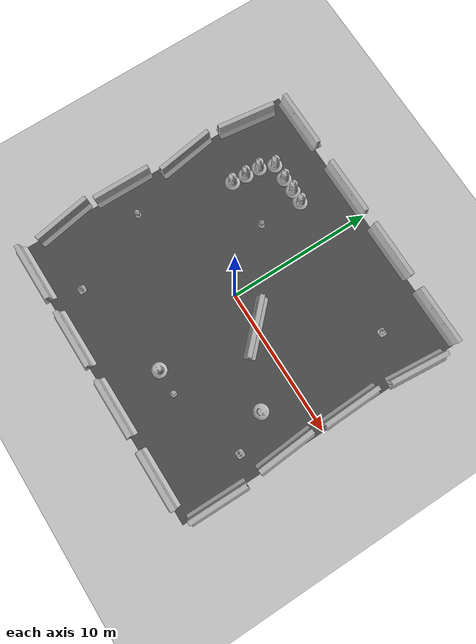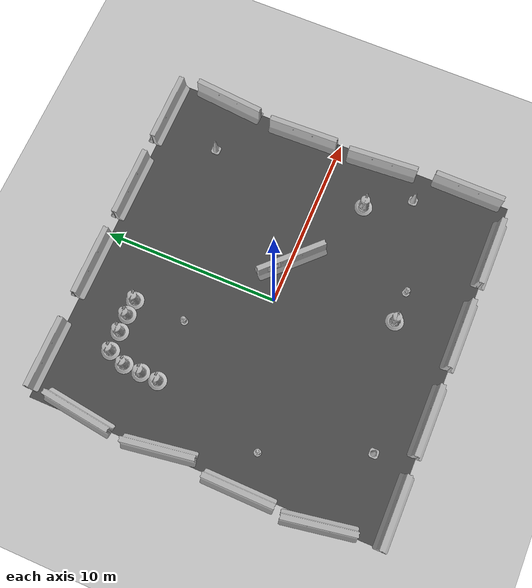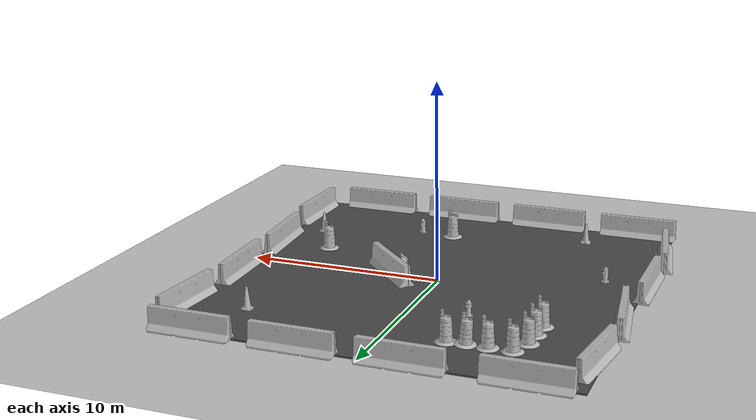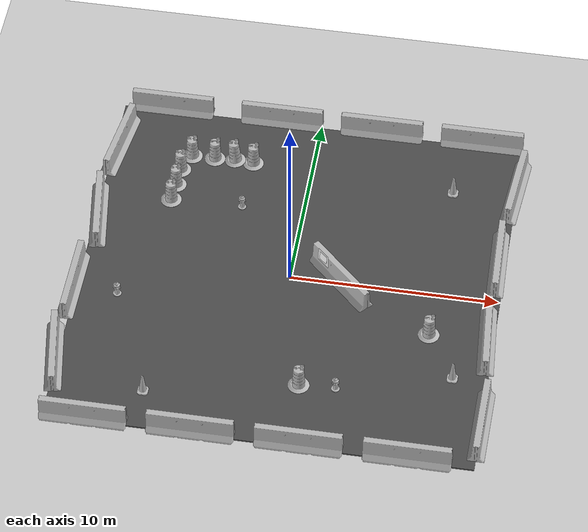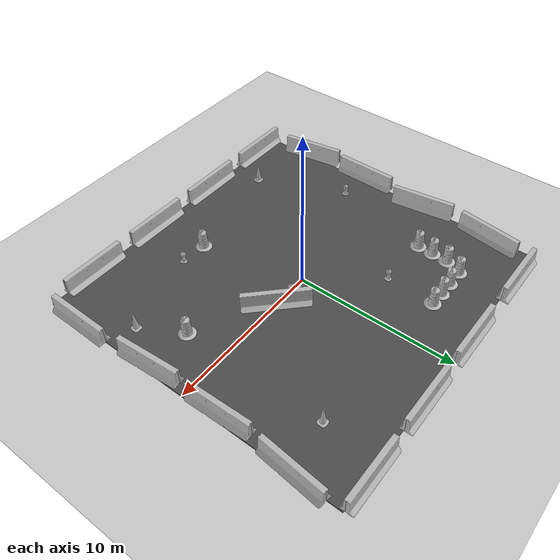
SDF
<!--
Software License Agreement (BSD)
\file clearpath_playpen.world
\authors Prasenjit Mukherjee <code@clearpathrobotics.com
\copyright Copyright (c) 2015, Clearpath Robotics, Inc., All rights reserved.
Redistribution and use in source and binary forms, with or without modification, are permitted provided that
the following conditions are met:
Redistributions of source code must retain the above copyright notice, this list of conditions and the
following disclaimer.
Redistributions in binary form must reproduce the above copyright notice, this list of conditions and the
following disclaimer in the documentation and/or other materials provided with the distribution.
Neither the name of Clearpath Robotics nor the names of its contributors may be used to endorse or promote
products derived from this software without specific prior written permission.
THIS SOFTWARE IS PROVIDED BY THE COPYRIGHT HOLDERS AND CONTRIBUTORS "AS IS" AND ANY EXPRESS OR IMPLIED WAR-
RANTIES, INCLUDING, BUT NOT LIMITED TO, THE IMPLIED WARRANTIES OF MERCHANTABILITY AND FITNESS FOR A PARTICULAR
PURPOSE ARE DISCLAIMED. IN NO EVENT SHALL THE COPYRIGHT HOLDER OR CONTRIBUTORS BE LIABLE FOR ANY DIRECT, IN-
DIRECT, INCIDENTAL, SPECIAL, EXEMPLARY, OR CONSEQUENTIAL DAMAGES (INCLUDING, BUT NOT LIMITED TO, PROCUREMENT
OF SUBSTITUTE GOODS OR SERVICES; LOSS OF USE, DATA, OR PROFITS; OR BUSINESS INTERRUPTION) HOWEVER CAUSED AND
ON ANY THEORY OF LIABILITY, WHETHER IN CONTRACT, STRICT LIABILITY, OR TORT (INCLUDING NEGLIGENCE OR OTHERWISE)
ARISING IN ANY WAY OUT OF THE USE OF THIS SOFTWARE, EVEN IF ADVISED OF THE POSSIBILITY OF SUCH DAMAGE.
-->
<sdf version="1.4">
 <world name="default">
  <light name="sun" type="directional">
   <pose>0 0 10 0 -0 0</pose>
   <diffuse>0.8 0.8 0.8 1</diffuse>
   <specular>0.2 0.2 0.2 1</specular>
   <attenuation>
    <range>1000</range>
    <constant>0.9</constant>
    <linear>0.01</linear>
    <quadratic>0.001</quadratic>
   </attenuation>
   <direction>-0.5 0.1 -0.9</direction>
  </light>
  <model name="ground_plane">
   <static>1</static>
   <link name="link">
    <collision name="collision">
     <geometry><plane><normal>0 0 1</normal><size>100 100</size></plane></geometry>
     <surface><friction><ode><mu>100</mu><mu2>50</mu2></ode></friction></surface>
    </collision>
    <visual name="visual">
     <cast_shadows>0</cast_shadows>
     <geometry><plane><normal>0 0 1</normal><size>100 100</size></plane></geometry>
     <material>
      <script><uri>file://media/materials/scripts/gazebo.material</uri><name>Gazebo/Grey</name></script>
     </material>
    </visual>
    <velocity_decay><linear>0</linear><angular>0</angular></velocity_decay>
   </link>
  </model>
  <physics type="ode">
   <max_step_size>0.01</max_step_size>
   <real_time_factor>1</real_time_factor>
   <real_time_update_rate>100</real_time_update_rate>
   <gravity>0 0 -9.8</gravity>
  </physics>
  <scene><ambient>0.4 0.4 0.4 1</ambient><background>0.7 0.7 0.7 1</background><shadows>1</shadows></scene>
  <model name="jersey_barrier">
   <static>1</static>
   <link name="link">
    <visual name="visual">
     <geometry><mesh><uri>model://jersey_barrier/meshes/jersey_barrier.dae</uri></mesh></geometry>
    </visual>
    <collision name="upright">
     <pose>0 0 0.5715 0 -0 0</pose>
     <geometry><box><size>4.06542 0.3063 1.143</size></box></geometry>
    </collision>
    <collision name="base">
     <pose>0 0 0.032258 0 -0 0</pose>
     <geometry><box><size>4.06542 0.8107 0.064516</size></box></geometry>
    </collision>
    <collision name="base2">
     <pose>0 0 0.1 0 -0 0</pose>
     <geometry><box><size>4.06542 0.65 0.1</size></box></geometry>
    </collision>
    <collision name="base3">
     <pose>0 0 0.2 0 -0 0</pose>
     <geometry><box><size>4.06542 0.5 0.1</size></box></geometry>
    </collision>
    <collision name="left-angle">
     <pose>0 -0.224 0.2401 0.9 -0 0</pose>
     <geometry><box><size>4.06542 0.5 0.064516</size></box></geometry>
    </collision>
    <collision name="right-angle">
     <pose>0 0.224 0.2401 -0.9 0 0</pose>
     <geometry><box><size>4.06542 0.5 0.064516</size></box></geometry>
    </collision>
    <velocity_decay><linear>0</linear><angular>0</angular></velocity_decay>
   </link>
   <pose>-8 -10 0 0 -0 0</pose>
  </model>
  <model name="jersey_barrier_0">
   <static>1</static>
   <link name="link">
    <visual name="visual">
     <geometry><mesh><uri>model://jersey_barrier/meshes/jersey_barrier.dae</uri></mesh></geometry>
    </visual>
    <collision name="upright">
     <pose>0 0 0.5715 0 -0 0</pose>
     <geometry><box><size>4.06542 0.3063 1.143</size></box></geometry>
    </collision>
    <collision name="base">
     <pose>0 0 0.032258 0 -0 0</pose>
     <geometry><box><size>4.06542 0.8107 0.064516</size></box></geometry>
    </collision>
    <collision name="base2">
     <pose>0 0 0.1 0 -0 0</pose>
     <geometry><box><size>4.06542 0.65 0.1</size></box></geometry>
    </collision>
    <collision name="base3">
     <pose>0 0 0.2 0 -0 0</pose>
     <geometry><box><size>4.06542 0.5 0.1</size></box></geometry>
    </collision>
    <collision name="left-angle">
     <pose>0 -0.224 0.2401 0.9 -0 0</pose>
     <geometry><box><size>4.06542 0.5 0.064516</size></box></geometry>
    </collision>
    <collision name="right-angle">
     <pose>0 0.224 0.2401 -0.9 0 0</pose>
     <geometry><box><size>4.06542 0.5 0.064516</size></box></geometry>
    </collision>
    <velocity_decay><linear>0</linear><angular>0</angular></velocity_decay>
   </link>
   <pose>-3 -10 0 0 -0 0</pose>
  </model>
  <model name="jersey_barrier_1">
   <static>1</static>
   <link name="link">
    <visual name="visual">
     <geometry><mesh><uri>model://jersey_barrier/meshes/jersey_barrier.dae</uri></mesh></geometry>
    </visual>
    <collision name="upright">
     <pose>0 0 0.5715 0 -0 0</pose>
     <geometry><box><size>4.06542 0.3063 1.143</size></box></geometry>
    </collision>
    <collision name="base">
     <pose>0 0 0.032258 0 -0 0</pose>
     <geometry><box><size>4.06542 0.8107 0.064516</size></box></geometry>
    </collision>
    <collision name="base2">
     <pose>0 0 0.1 0 -0 0</pose>
     <geometry><box><size>4.06542 0.65 0.1</size></box></geometry>
    </collision>
    <collision name="base3">
     <pose>0 0 0.2 0 -0 0</pose>
     <geometry><box><size>4.06542 0.5 0.1</size></box></geometry>
    </collision>
    <collision name="left-angle">
     <pose>0 -0.224 0.2401 0.9 -0 0</pose>
     <geometry><box><size>4.06542 0.5 0.064516</size></box></geometry>
    </collision>
    <collision name="right-angle">
     <pose>0 0.224 0.2401 -0.9 0 0</pose>
     <geometry><box><size>4.06542 0.5 0.064516</size></box></geometry>
    </collision>
    <velocity_decay><linear>0</linear><angular>0</angular></velocity_decay>
   </link>
   <pose>2 -10 0 0 -0 0</pose>
  </model>
  <model name="jersey_barrier_2">
   <static>1</static>
   <link name="link">
    <visual name="visual">
     <geometry><mesh><uri>model://jersey_barrier/meshes/jersey_barrier.dae</uri></mesh></geometry>
    </visual>
    <collision name="upright">
     <pose>0 0 0.5715 0 -0 0</pose>
     <geometry><box><size>4.06542 0.3063 1.143</size></box></geometry>
    </collision>
    <collision name="base">
     <pose>0 0 0.032258 0 -0 0</pose>
     <geometry><box><size>4.06542 0.8107 0.064516</size></box></geometry>
    </collision>
    <collision name="base2">
     <pose>0 0 0.1 0 -0 0</pose>
     <geometry><box><size>4.06542 0.65 0.1</size></box></geometry>
    </collision>
    <collision name="base3">
     <pose>0 0 0.2 0 -0 0</pose>
     <geometry><box><size>4.06542 0.5 0.1</size></box></geometry>
    </collision>
    <collision name="left-angle">
     <pose>0 -0.224 0.2401 0.9 -0 0</pose>
     <geometry><box><size>4.06542 0.5 0.064516</size></box></geometry>
    </collision>
    <collision name="right-angle">
     <pose>0 0.224 0.2401 -0.9 0 0</pose>
     <geometry><box><size>4.06542 0.5 0.064516</size></box></geometry>
    </collision>
    <velocity_decay><linear>0</linear><angular>0</angular></velocity_decay>
   </link>
   <pose>7 -10 0 0 -0 0</pose>
  </model>
  <model name="jersey_barrier_3">
   <static>1</static>
   <link name="link">
    <visual name="visual">
     <geometry><mesh><uri>model://jersey_barrier/meshes/jersey_barrier.dae</uri></mesh></geometry>
    </visual>
    <collision name="upright">
     <pose>0 0 0.5715 0 -0 0</pose>
     <geometry><box><size>4.06542 0.3063 1.143</size></box></geometry>
    </collision>
    <collision name="base">
     <pose>0 0 0.032258 0 -0 0</pose>
     <geometry><box><size>4.06542 0.8107 0.064516</size></box></geometry>
    </collision>
    <collision name="base2">
     <pose>0 0 0.1 0 -0 0</pose>
     <geometry><box><size>4.06542 0.65 0.1</size></box></geometry>
    </collision>
    <collision name="base3">
     <pose>0 0 0.2 0 -0 0</pose>
     <geometry><box><size>4.06542 0.5 0.1</size></box></geometry>
    </collision>
    <collision name="left-angle">
     <pose>0 -0.224 0.2401 0.9 -0 0</pose>
     <geometry><box><size>4.06542 0.5 0.064516</size></box></geometry>
    </collision>
    <collision name="right-angle">
     <pose>0 0.224 0.2401 -0.9 0 0</pose>
     <geometry><box><size>4.06542 0.5 0.064516</size></box></geometry>
    </collision>
    <velocity_decay><linear>0</linear><angular>0</angular></velocity_decay>
   </link>
   <pose>-7.50675 10 0 0 -0 0</pose>
  </model>
  <model name="jersey_barrier_4">
   <static>1</static>
   <link name="link">
    <visual name="visual">
     <geometry><mesh><uri>model://jersey_barrier/meshes/jersey_barrier.dae</uri></mesh></geometry>
    </visual>
    <collision name="upright">
     <pose>0 0 0.5715 0 -0 0</pose>
     <geometry><box><size>4.06542 0.3063 1.143</size></box></geometry>
    </collision>
    <collision name="base">
     <pose>0 0 0.032258 0 -0 0</pose>
     <geometry><box><size>4.06542 0.8107 0.064516</size></box></geometry>
    </collision>
    <collision name="base2">
     <pose>0 0 0.1 0 -0 0</pose>
     <geometry><box><size>4.06542 0.65 0.1</size></box></geometry>
    </collision>
    <collision name="base3">
     <pose>0 0 0.2 0 -0 0</pose>
     <geometry><box><size>4.06542 0.5 0.1</size></box></geometry>
    </collision>
    <collision name="left-angle">
     <pose>0 -0.224 0.2401 0.9 -0 0</pose>
     <geometry><box><size>4.06542 0.5 0.064516</size></box></geometry>
    </collision>
    <collision name="right-angle">
     <pose>0 0.224 0.2401 -0.9 0 0</pose>
     <geometry><box><size>4.06542 0.5 0.064516</size></box></geometry>
    </collision>
    <velocity_decay><linear>0</linear><angular>0</angular></velocity_decay>
   </link>
   <pose>-2 10 0 0 -0 0</pose>
  </model>
  <model name="jersey_barrier_5">
   <static>1</static>
   <link name="link">
    <visual name="visual">
     <geometry><mesh><uri>model://jersey_barrier/meshes/jersey_barrier.dae</uri></mesh></geometry>
    </visual>
    <collision name="upright">
     <pose>0 0 0.5715 0 -0 0</pose>
     <geometry><box><size>4.06542 0.3063 1.143</size></box></geometry>
    </collision>
    <collision name="base">
     <pose>0 0 0.032258 0 -0 0</pose>
     <geometry><box><size>4.06542 0.8107 0.064516</size></box></geometry>
    </collision>
    <collision name="base2">
     <pose>0 0 0.1 0 -0 0</pose>
     <geometry><box><size>4.06542 0.65 0.1</size></box></geometry>
    </collision>
    <collision name="base3">
     <pose>0 0 0.2 0 -0 0</pose>
     <geometry><box><size>4.06542 0.5 0.1</size></box></geometry>
    </collision>
    <collision name="left-angle">
     <pose>0 -0.224 0.2401 0.9 -0 0</pose>
     <geometry><box><size>4.06542 0.5 0.064516</size></box></geometry>
    </collision>
    <collision name="right-angle">
     <pose>0 0.224 0.2401 -0.9 0 0</pose>
     <geometry><box><size>4.06542 0.5 0.064516</size></box></geometry>
    </collision>
    <velocity_decay><linear>0</linear><angular>0</angular></velocity_decay>
   </link>
   <pose>3 10 0 0 -0 0</pose>
  </model>
  <model name="jersey_barrier_6">
   <static>1</static>
   <link name="link">
    <visual name="visual">
     <geometry><mesh><uri>model://jersey_barrier/meshes/jersey_barrier.dae</uri></mesh></geometry>
    </visual>
    <collision name="upright">
     <pose>0 0 0.5715 0 -0 0</pose>
     <geometry><box><size>4.06542 0.3063 1.143</size></box></geometry>
    </collision>
    <collision name="base">
     <pose>0 0 0.032258 0 -0 0</pose>
     <geometry><box><size>4.06542 0.8107 0.064516</size></box></geometry>
    </collision>
    <collision name="base2">
     <pose>0 0 0.1 0 -0 0</pose>
     <geometry><box><size>4.06542 0.65 0.1</size></box></geometry>
    </collision>
    <collision name="base3">
     <pose>0 0 0.2 0 -0 0</pose>
     <geometry><box><size>4.06542 0.5 0.1</size></box></geometry>
    </collision>
    <collision name="left-angle">
     <pose>0 -0.224 0.2401 0.9 -0 0</pose>
     <geometry><box><size>4.06542 0.5 0.064516</size></box></geometry>
    </collision>
    <collision name="right-angle">
     <pose>0 0.224 0.2401 -0.9 0 0</pose>
     <geometry><box><size>4.06542 0.5 0.064516</size></box></geometry>
    </collision>
    <velocity_decay><linear>0</linear><angular>0</angular></velocity_decay>
   </link>
   <pose>8 10 0 0 -0 0</pose>
  </model>
  <model name="jersey_barrier_7">
   <static>1</static>
   <link name="link">
    <visual name="visual">
     <geometry><mesh><uri>model://jersey_barrier/meshes/jersey_barrier.dae</uri></mesh></geometry>
    </visual>
    <collision name="upright">
     <pose>0 0 0.5715 0 -0 0</pose>
     <geometry><box><size>4.06542 0.3063 1.143</size></box></geometry>
    </collision>
    <collision name="base">
     <pose>0 0 0.032258 0 -0 0</pose>
     <geometry><box><size>4.06542 0.8107 0.064516</size></box></geometry>
    </collision>
    <collision name="base2">
     <pose>0 0 0.1 0 -0 0</pose>
     <geometry><box><size>4.06542 0.65 0.1</size></box></geometry>
    </collision>
    <collision name="base3">
     <pose>0 0 0.2 0 -0 0</pose>
     <geometry><box><size>4.06542 0.5 0.1</size></box></geometry>
    </collision>
    <collision name="left-angle">
     <pose>0 -0.224 0.2401 0.9 -0 0</pose>
     <geometry><box><size>4.06542 0.5 0.064516</size></box></geometry>
    </collision>
    <collision name="right-angle">
     <pose>0 0.224 0.2401 -0.9 0 0</pose>
     <geometry><box><size>4.06542 0.5 0.064516</size></box></geometry>
    </collision>
    <velocity_decay><linear>0</linear><angular>0</angular></velocity_decay>
   </link>
   <pose>9.74902 -2.57759 0 0 -0 1.64</pose>
  </model>
  <model name="jersey_barrier_8">
   <static>1</static>
   <link name="link">
    <visual name="visual">
     <geometry><mesh><uri>model://jersey_barrier/meshes/jersey_barrier.dae</uri></mesh></geometry>
    </visual>
    <collision name="upright">
     <pose>0 0 0.5715 0 -0 0</pose>
     <geometry><box><size>4.06542 0.3063 1.143</size></box></geometry>
    </collision>
    <collision name="base">
     <pose>0 0 0.032258 0 -0 0</pose>
     <geometry><box><size>4.06542 0.8107 0.064516</size></box></geometry>
    </collision>
    <collision name="base2">
     <pose>0 0 0.1 0 -0 0</pose>
     <geometry><box><size>4.06542 0.65 0.1</size></box></geometry>
    </collision>
    <collision name="base3">
     <pose>0 0 0.2 0 -0 0</pose>
     <geometry><box><size>4.06542 0.5 0.1</size></box></geometry>
    </collision>
    <collision name="left-angle">
     <pose>0 -0.224 0.2401 0.9 -0 0</pose>
     <geometry><box><size>4.06542 0.5 0.064516</size></box></geometry>
    </collision>
    <collision name="right-angle">
     <pose>0 0.224 0.2401 -0.9 0 0</pose>
     <geometry><box><size>4.06542 0.5 0.064516</size></box></geometry>
    </collision>
    <velocity_decay><linear>0</linear><angular>0</angular></velocity_decay>
   </link>
   <pose>9.70141 2.24369 0 0 -0 1.6</pose>
  </model>
  <model name="jersey_barrier_9">
   <static>1</static>
   <link name="link">
    <visual name="visual">
     <geometry><mesh><uri>model://jersey_barrier/meshes/jersey_barrier.dae</uri></mesh></geometry>
    </visual>
    <collision name="upright">
     <pose>0 0 0.5715 0 -0 0</pose>
     <geometry><box><size>4.06542 0.3063 1.143</size></box></geometry>
    </collision>
    <collision name="base">
     <pose>0 0 0.032258 0 -0 0</pose>
     <geometry><box><size>4.06542 0.8107 0.064516</size></box></geometry>
    </collision>
    <collision name="base2">
     <pose>0 0 0.1 0 -0 0</pose>
     <geometry><box><size>4.06542 0.65 0.1</size></box></geometry>
    </collision>
    <collision name="base3">
     <pose>0 0 0.2 0 -0 0</pose>
     <geometry><box><size>4.06542 0.5 0.1</size></box></geometry>
    </collision>
    <collision name="left-angle">
     <pose>0 -0.224 0.2401 0.9 -0 0</pose>
     <geometry><box><size>4.06542 0.5 0.064516</size></box></geometry>
    </collision>
    <collision name="right-angle">
     <pose>0 0.224 0.2401 -0.9 0 0</pose>
     <geometry><box><size>4.06542 0.5 0.064516</size></box></geometry>
    </collision>
    <velocity_decay><linear>0</linear><angular>0</angular></velocity_decay>
   </link>
   <pose>-10.0607 -6.69856 0 0 0 -1.4</pose>
  </model>
  <model name="jersey_barrier_10">
   <static>1</static>
   <link name="link">
    <visual name="visual">
     <geometry><mesh><uri>model://jersey_barrier/meshes/jersey_barrier.dae</uri></mesh></geometry>
    </visual>
    <collision name="upright">
     <pose>0 0 0.5715 0 -0 0</pose>
     <geometry><box><size>4.06542 0.3063 1.143</size></box></geometry>
    </collision>
    <collision name="base">
     <pose>0 0 0.032258 0 -0 0</pose>
     <geometry><box><size>4.06542 0.8107 0.064516</size></box></geometry>
    </collision>
    <collision name="base2">
     <pose>0 0 0.1 0 -0 0</pose>
     <geometry><box><size>4.06542 0.65 0.1</size></box></geometry>
    </collision>
    <collision name="base3">
     <pose>0 0 0.2 0 -0 0</pose>
     <geometry><box><size>4.06542 0.5 0.1</size></box></geometry>
    </collision>
    <collision name="left-angle">
     <pose>0 -0.224 0.2401 0.9 -0 0</pose>
     <geometry><box><size>4.06542 0.5 0.064516</size></box></geometry>
    </collision>
    <collision name="right-angle">
     <pose>0 0.224 0.2401 -0.9 0 0</pose>
     <geometry><box><size>4.06542 0.5 0.064516</size></box></geometry>
    </collision>
    <velocity_decay><linear>0</linear><angular>0</angular></velocity_decay>
   </link>
   <pose>-10.0774 -2.27159 0 0 -0 1.56</pose>
  </model>
  <model name="jersey_barrier_11">
   <static>1</static>
   <link name="link">
    <visual name="visual">
     <geometry><mesh><uri>model://jersey_barrier/meshes/jersey_barrier.dae</uri></mesh></geometry>
    </visual>
    <collision name="upright">
     <pose>0 0 0.5715 0 -0 0</pose>
     <geometry><box><size>4.06542 0.3063 1.143</size></box></geometry>
    </collision>
    <collision name="base">
     <pose>0 0 0.032258 0 -0 0</pose>
     <geometry><box><size>4.06542 0.8107 0.064516</size></box></geometry>
    </collision>
    <collision name="base2">
     <pose>0 0 0.1 0 -0 0</pose>
     <geometry><box><size>4.06542 0.65 0.1</size></box></geometry>
    </collision>
    <collision name="base3">
     <pose>0 0 0.2 0 -0 0</pose>
     <geometry><box><size>4.06542 0.5 0.1</size></box></geometry>
    </collision>
    <collision name="left-angle">
     <pose>0 -0.224 0.2401 0.9 -0 0</pose>
     <geometry><box><size>4.06542 0.5 0.064516</size></box></geometry>
    </collision>
    <collision name="right-angle">
     <pose>0 0.224 0.2401 -0.9 0 0</pose>
     <geometry><box><size>4.06542 0.5 0.064516</size></box></geometry>
    </collision>
    <velocity_decay><linear>0</linear><angular>0</angular></velocity_decay>
   </link>
   <pose>-9.77013 2.34791 0 0 -0 1.72</pose>
  </model>
  <model name="jersey_barrier_12">
   <static>1</static>
   <link name="link">
    <visual name="visual">
     <geometry><mesh><uri>model://jersey_barrier/meshes/jersey_barrier.dae</uri></mesh></geometry>
    </visual>
    <collision name="upright">
     <pose>0 0 0.5715 0 -0 0</pose>
     <geometry><box><size>4.06542 0.3063 1.143</size></box></geometry>
    </collision>
    <collision name="base">
     <pose>0 0 0.032258 0 -0 0</pose>
     <geometry><box><size>4.06542 0.8107 0.064516</size></box></geometry>
    </collision>
    <collision name="base2">
     <pose>0 0 0.1 0 -0 0</pose>
     <geometry><box><size>4.06542 0.65 0.1</size></box></geometry>
    </collision>
    <collision name="base3">
     <pose>0 0 0.2 0 -0 0</pose>
     <geometry><box><size>4.06542 0.5 0.1</size></box></geometry>
    </collision>
    <collision name="left-angle">
     <pose>0 -0.224 0.2401 0.9 -0 0</pose>
     <geometry><box><size>4.06542 0.5 0.064516</size></box></geometry>
    </collision>
    <collision name="right-angle">
     <pose>0 0.224 0.2401 -0.9 0 0</pose>
     <geometry><box><size>4.06542 0.5 0.064516</size></box></geometry>
    </collision>
    <velocity_decay><linear>0</linear><angular>0</angular></velocity_decay>
   </link>
   <pose>10.0879 -7.62159 0 0 -0 1.56</pose>
  </model>
  <model name="jersey_barrier_13">
   <static>1</static>
   <link name="link">
    <visual name="visual">
     <geometry><mesh><uri>model://jersey_barrier/meshes/jersey_barrier.dae</uri></mesh></geometry>
    </visual>
    <collision name="upright">
     <pose>0 0 0.5715 0 -0 0</pose>
     <geometry><box><size>4.06542 0.3063 1.143</size></box></geometry>
    </collision>
    <collision name="base">
     <pose>0 0 0.032258 0 -0 0</pose>
     <geometry><box><size>4.06542 0.8107 0.064516</size></box></geometry>
    </collision>
    <collision name="base2">
     <pose>0 0 0.1 0 -0 0</pose>
     <geometry><box><size>4.06542 0.65 0.1</size></box></geometry>
    </collision>
    <collision name="base3">
     <pose>0 0 0.2 0 -0 0</pose>
     <geometry><box><size>4.06542 0.5 0.1</size></box></geometry>
    </collision>
    <collision name="left-angle">
     <pose>0 -0.224 0.2401 0.9 -0 0</pose>
     <geometry><box><size>4.06542 0.5 0.064516</size></box></geometry>
    </collision>
    <collision name="right-angle">
     <pose>0 0.224 0.2401 -0.9 0 0</pose>
     <geometry><box><size>4.06542 0.5 0.064516</size></box></geometry>
    </collision>
    <velocity_decay><linear>0</linear><angular>0</angular></velocity_decay>
   </link>
   <pose>10 7 0 0 -0 1.48</pose>
  </model>
  <model name="jersey_barrier_14">
   <static>1</static>
   <link name="link">
    <visual name="visual">
     <geometry><mesh><uri>model://jersey_barrier/meshes/jersey_barrier.dae</uri></mesh></geometry>
    </visual>
    <collision name="upright">
     <pose>0 0 0.5715 0 -0 0</pose>
     <geometry><box><size>4.06542 0.3063 1.143</size></box></geometry>
    </collision>
    <collision name="base">
     <pose>0 0 0.032258 0 -0 0</pose>
     <geometry><box><size>4.06542 0.8107 0.064516</size></box></geometry>
    </collision>
    <collision name="base2">
     <pose>0 0 0.1 0 -0 0</pose>
     <geometry><box><size>4.06542 0.65 0.1</size></box></geometry>
    </collision>
    <collision name="base3">
     <pose>0 0 0.2 0 -0 0</pose>
     <geometry><box><size>4.06542 0.5 0.1</size></box></geometry>
    </collision>
    <collision name="left-angle">
     <pose>0 -0.224 0.2401 0.9 -0 0</pose>
     <geometry><box><size>4.06542 0.5 0.064516</size></box></geometry>
    </collision>
    <collision name="right-angle">
     <pose>0 0.224 0.2401 -0.9 0 0</pose>
     <geometry><box><size>4.06542 0.5 0.064516</size></box></geometry>
    </collision>
    <velocity_decay><linear>0</linear><angular>0</angular></velocity_decay>
   </link>
   <pose>-9.64482 7.05946 0 0 -0 1.44</pose>
  </model>
  <model name="fire_hydrant">
   <static>1</static>
   <link name="link">
    <collision name="collision">
     <geometry><mesh><uri>model://fire_hydrant/meshes/fire_hydrant.dae</uri></mesh></geometry>
    </collision>
    <visual name="visual">
     <geometry><mesh><uri>model://fire_hydrant/meshes/fire_hydrant.dae</uri></mesh></geometry>
    </visual>
    <velocity_decay><linear>0</linear><angular>0</angular></velocity_decay>
   </link>
   <pose>3.18024 -6.51118 0 0 -0 0</pose>
  </model>
  <model name="fire_hydrant_0">
   <static>1</static>
   <link name="link">
    <collision name="collision">
     <geometry><mesh><uri>model://fire_hydrant/meshes/fire_hydrant.dae</uri></mesh></geometry>
    </collision>
    <visual name="visual">
     <geometry><mesh><uri>model://fire_hydrant/meshes/fire_hydrant.dae</uri></mesh></geometry>
    </visual>
    <velocity_decay><linear>0</linear><angular>0</angular></velocity_decay>
   </link>
   <pose>-3 4 0 0 -0 0</pose>
  </model>
  <model name="fire_hydrant_1">
   <static>1</static>
   <link name="link">
    <collision name="collision">
     <geometry><mesh><uri>model://fire_hydrant/meshes/fire_hydrant.dae</uri></mesh></geometry>
    </collision>
    <visual name="visual">
     <geometry><mesh><uri>model://fire_hydrant/meshes/fire_hydrant.dae</uri></mesh></geometry>
    </visual>
    <velocity_decay><linear>0</linear><angular>0</angular></velocity_decay>
   </link>
   <pose>-7.90686 -2.41363 0 0 -0 0</pose>
  </model>
  <model name="jersey_barrier_15">
   <static>1</static>
   <link name="link">
    <visual name="visual">
     <geometry><mesh><uri>model://jersey_barrier/meshes/jersey_barrier.dae</uri></mesh></geometry>
    </visual>
    <collision name="upright">
     <pose>0 0 0.5715 0 -0 0</pose>
     <geometry><box><size>4.06542 0.3063 1.143</size></box></geometry>
    </collision>
    <collision name="base">
     <pose>0 0 0.032258 0 -0 0</pose>
     <geometry><box><size>4.06542 0.8107 0.064516</size></box></geometry>
    </collision>
    <collision name="base2">
     <pose>0 0 0.1 0 -0 0</pose>
     <geometry><box><size>4.06542 0.65 0.1</size></box></geometry>
    </collision>
    <collision name="base3">
     <pose>0 0 0.2 0 -0 0</pose>
     <geometry><box><size>4.06542 0.5 0.1</size></box></geometry>
    </collision>
    <collision name="left-angle">
     <pose>0 -0.224 0.2401 0.9 -0 0</pose>
     <geometry><box><size>4.06542 0.5 0.064516</size></box></geometry>
    </collision>
    <collision name="right-angle">
     <pose>0 0.224 0.2401 -0.9 0 0</pose>
     <geometry><box><size>4.06542 0.5 0.064516</size></box></geometry>
    </collision>
    <velocity_decay><linear>0</linear><angular>0</angular></velocity_decay>
   </link>
   <pose>2.45495 0 0 0 -0 2.36</pose>
  </model>
  <model name="Construction Cone">
   <link name="link">
    <collision name="collision">
     <geometry>
      <mesh><scale>10 10 10</scale><uri>model://construction_cone/meshes/construction_cone.dae</uri></mesh>
     </geometry>
    </collision>
    <visual name="visual">
     <geometry>
      <mesh><scale>10 10 10</scale><uri>model://construction_cone/meshes/construction_cone.dae</uri></mesh>
     </geometry>
    </visual>
    <velocity_decay><linear>0</linear><angular>0</angular></velocity_decay>
    <inertial>
     <inertia><ixx>1</ixx><ixy>0</ixy><ixz>0</ixz><iyy>1</iyy><iyz>0</iyz><izz>1</izz></inertia>
     <mass>1</mass>
    </inertial>
   </link>
   <pose>-5.59121 -8 0.05 0 -1e-06 0</pose>
   <static>0</static>
  </model>
  <model name="Construction Barrel">
   <link name="link">
    <inertial>
     <pose>0 0 0.4 0 -0 0</pose>
     <mass>500</mass>
     <inertia><ixx>51.2096</ixx><iyy>51.2096</iyy><izz>25</izz><ixy>0</ixy><ixz>0</ixz><iyz>0</iyz></inertia>
    </inertial>
    <collision name="collision">
     <geometry><mesh><uri>model://construction_barrel/meshes/construction_barrel.dae</uri></mesh></geometry>
    </collision>
    <visual name="visual">
     <geometry><mesh><uri>model://construction_barrel/meshes/construction_barrel.dae</uri></mesh></geometry>
    </visual>
    <velocity_decay><linear>0</linear><angular>0</angular></velocity_decay>
   </link>
   <pose>7.00006 -2.54635 0.049999 4e-06 -0 0.000401</pose>
   <static>0</static>
  </model>
  <model name="Construction Cone_0">
   <link name="link">
    <collision name="collision">
     <geometry>
      <mesh><scale>10 10 10</scale><uri>model://construction_cone/meshes/construction_cone.dae</uri></mesh>
     </geometry>
    </collision>
    <visual name="visual">
     <geometry>
      <mesh><scale>10 10 10</scale><uri>model://construction_cone/meshes/construction_cone.dae</uri></mesh>
     </geometry>
    </visual>
    <velocity_decay><linear>0</linear><angular>0</angular></velocity_decay>
    <inertial>
     <inertia><ixx>1</ixx><ixy>0</ixy><ixz>0</ixz><iyy>1</iyy><iyz>0</iyz><izz>1</izz></inertia>
     <mass>1</mass>
    </inertial>
   </link>
   <pose>6.99685 6.55732 0.05 -8.27181e-25 1e-06 -0.007012</pose>
   <static>0</static>
  </model>
  <model name="Construction Barrel_0">
   <link name="link">
    <inertial>
     <pose>0 0 0.4 0 -0 0</pose>
     <mass>500</mass>
     <inertia><ixx>51.2096</ixx><iyy>51.2096</iyy><izz>25</izz><ixy>0</ixy><ixz>0</ixz><iyz>0</iyz></inertia>
    </inertial>
    <collision name="collision">
     <geometry><mesh><uri>model://construction_barrel/meshes/construction_barrel.dae</uri></mesh></geometry>
    </collision>
    <visual name="visual">
     <geometry><mesh><uri>model://construction_barrel/meshes/construction_barrel.dae</uri></mesh></geometry>
    </visual>
    <velocity_decay><linear>0</linear><angular>0</angular></velocity_decay>
   </link>
   <pose>1.45178 -6.51128 0.049999 -1e-06 -3e-06 3.8e-05</pose>
   <static>0</static>
  </model>
  <model name="asphalt_plane">
   <static>1</static>
   <link name="link">
    <collision name="collision"><geometry><box><size>20 20 0.1</size></box></geometry></collision>
    <visual name="visual">
     <cast_shadows>0</cast_shadows>
     <geometry><box><size>20 20 0.1</size></box></geometry>
     <material>
      <script>
       <uri>model://asphalt_plane/materials/scripts</uri>
       <uri>model://asphalt_plane/materials/textures</uri>
       <name>vrc/asphalt</name>
      </script>
     </material>
    </visual>
    <velocity_decay><linear>0</linear><angular>0</angular></velocity_decay>
   </link>
   <pose>0.076733 -0.110379 0 0 -0 0</pose>
  </model>
  <model name="Construction Barrel_1">
   <link name="link">
    <inertial>
     <pose>0 0 0.4 0 -0 0</pose>
     <mass>500</mass>
     <inertia><ixx>51.2096</ixx><iyy>51.2096</iyy><izz>25</izz><ixy>0</ixy><ixz>0</ixz><iyz>0</iyz></inertia>
    </inertial>
    <collision name="collision">
     <geometry><mesh><uri>model://construction_barrel/meshes/construction_barrel.dae</uri></mesh></geometry>
    </collision>
    <visual name="visual">
     <geometry><mesh><uri>model://construction_barrel/meshes/construction_barrel.dae</uri></mesh></geometry>
    </visual>
    <velocity_decay><linear>0</linear><angular>0</angular></velocity_decay>
   </link>
   <pose>-6.50482 3.9826 0.049999 4e-06 1e-06 -0.009616</pose>
   <static>0</static>
  </model>
  <model name="Construction Barrel_2">
   <link name="link">
    <inertial>
     <pose>0 0 0.4 0 -0 0</pose>
     <mass>500</mass>
     <inertia><ixx>51.2096</ixx><iyy>51.2096</iyy><izz>25</izz><ixy>0</ixy><ixz>0</ixz><iyz>0</iyz></inertia>
    </inertial>
    <collision name="collision">
     <geometry><mesh><uri>model://construction_barrel/meshes/construction_barrel.dae</uri></mesh></geometry>
    </collision>
    <visual name="visual">
     <geometry><mesh><uri>model://construction_barrel/meshes/construction_barrel.dae</uri></mesh></geometry>
    </visual>
    <velocity_decay><linear>0</linear><angular>0</angular></velocity_decay>
   </link>
   <pose>-6.45065 4.99639 0.049999 -1e-06 -2e-06 0.064981</pose>
   <static>0</static>
  </model>
  <model name="Construction Barrel_3">
   <link name="link">
    <inertial>
     <pose>0 0 0.4 0 -0 0</pose>
     <mass>500</mass>
     <inertia><ixx>51.2096</ixx><iyy>51.2096</iyy><izz>25</izz><ixy>0</ixy><ixz>0</ixz><iyz>0</iyz></inertia>
    </inertial>
    <collision name="collision">
     <geometry><mesh><uri>model://construction_barrel/meshes/construction_barrel.dae</uri></mesh></geometry>
    </collision>
    <visual name="visual">
     <geometry><mesh><uri>model://construction_barrel/meshes/construction_barrel.dae</uri></mesh></geometry>
    </visual>
    <velocity_decay><linear>0</linear><angular>0</angular></velocity_decay>
   </link>
   <pose>-6.40174 6.01109 0.05 -1e-06 -1e-06 -0.120729</pose>
   <static>0</static>
  </model>
  <model name="Construction Barrel_4">
   <link name="link">
    <inertial>
     <pose>0 0 0.4 0 -0 0</pose>
     <mass>500</mass>
     <inertia><ixx>51.2096</ixx><iyy>51.2096</iyy><izz>25</izz><ixy>0</ixy><ixz>0</ixz><iyz>0</iyz></inertia>
    </inertial>
    <collision name="collision">
     <geometry><mesh><uri>model://construction_barrel/meshes/construction_barrel.dae</uri></mesh></geometry>
    </collision>
    <visual name="visual">
     <geometry><mesh><uri>model://construction_barrel/meshes/construction_barrel.dae</uri></mesh></geometry>
    </visual>
    <velocity_decay><linear>0</linear><angular>0</angular></velocity_decay>
   </link>
   <pose>-6.00634 7.00879 0.049999 3e-06 -0 -0.04957</pose>
   <static>0</static>
  </model>
  <model name="Construction Barrel_5">
   <link name="link">
    <inertial>
     <pose>0 0 0.4 0 -0 0</pose>
     <mass>500</mass>
     <inertia><ixx>51.2096</ixx><iyy>51.2096</iyy><izz>25</izz><ixy>0</ixy><ixz>0</ixz><iyz>0</iyz></inertia>
    </inertial>
    <collision name="collision">
     <geometry><mesh><uri>model://construction_barrel/meshes/construction_barrel.dae</uri></mesh></geometry>
    </collision>
    <visual name="visual">
     <geometry><mesh><uri>model://construction_barrel/meshes/construction_barrel.dae</uri></mesh></geometry>
    </visual>
    <velocity_decay><linear>0</linear><angular>0</angular></velocity_decay>
   </link>
   <pose>-4.87565 7.00813 0.049999 -1e-06 -3e-06 0.146162</pose>
   <static>0</static>
  </model>
  <model name="Construction Barrel_6">
   <link name="link">
    <inertial>
     <pose>0 0 0.4 0 -0 0</pose>
     <mass>500</mass>
     <inertia><ixx>51.2096</ixx><iyy>51.2096</iyy><izz>25</izz><ixy>0</ixy><ixz>0</ixz><iyz>0</iyz></inertia>
    </inertial>
    <collision name="collision">
     <geometry><mesh><uri>model://construction_barrel/meshes/construction_barrel.dae</uri></mesh></geometry>
    </collision>
    <visual name="visual">
     <geometry><mesh><uri>model://construction_barrel/meshes/construction_barrel.dae</uri></mesh></geometry>
    </visual>
    <velocity_decay><linear>0</linear><angular>0</angular></velocity_decay>
   </link>
   <pose>-3.85615 7.02809 0.0897 -0.01028 -0.077931 0.017839</pose>
   <static>0</static>
  </model>
  <model name="Construction Barrel_7">
   <link name="link">
    <inertial>
     <pose>0 0 0.4 0 -0 0</pose>
     <mass>500</mass>
     <inertia><ixx>51.2096</ixx><iyy>51.2096</iyy><izz>25</izz><ixy>0</ixy><ixz>0</ixz><iyz>0</iyz></inertia>
    </inertial>
    <collision name="collision">
     <geometry><mesh><uri>model://construction_barrel/meshes/construction_barrel.dae</uri></mesh></geometry>
    </collision>
    <visual name="visual">
     <geometry><mesh><uri>model://construction_barrel/meshes/construction_barrel.dae</uri></mesh></geometry>
    </visual>
    <velocity_decay><linear>0</linear><angular>0</angular></velocity_decay>
   </link>
   <pose>-2.95979 6.99802 0.049998 -3e-06 -7e-06 -0.017994</pose>
   <static>0</static>
  </model>
  <model name="Construction Cone_1">
   <link name="link">
    <collision name="collision">
     <geometry>
      <mesh><scale>10 10 10</scale><uri>model://construction_cone/meshes/construction_cone.dae</uri></mesh>
     </geometry>
    </collision>
    <visual name="visual">
     <geometry>
      <mesh><scale>10 10 10</scale><uri>model://construction_cone/meshes/construction_cone.dae</uri></mesh>
     </geometry>
    </visual>
    <velocity_decay><linear>0</linear><angular>0</angular></velocity_decay>
    <inertial>
     <inertia><ixx>1</ixx><ixy>0</ixy><ixz>0</ixz><iyy>1</iyy><iyz>0</iyz><izz>1</izz></inertia>
     <mass>1</mass>
    </inertial>
   </link>
   <pose>8.42887 -5 0.049999 0 3e-06 0</pose>
   <static>0</static>
  </model>
  <include><uri>model://aruco_visual_marker_0</uri><pose>1.5 0.6 1 1.55 0 -0.75</pose></include>
 </world>
</sdf>

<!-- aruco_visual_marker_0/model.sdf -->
<sdf version='1.5'>
  <model name='aruco_visual_marker_0'>

    <link name='marker'>
      <pose frame=''>0 0 0 0 0 0</pose>
      <visual name='visual'>
        <geometry>
          <box>
            <size>0.5 0.5 0.01</size>
          </box>
        </geometry>
        <material>
          <script>
            <uri>model://aruco_visual_marker_0/materials/scripts</uri>
            <uri>model://aruco_visual_marker_0/materials/textures</uri>
            <name>ArucoVisualMarker0/Marker</name>
          </script>
          <ambient>1 1 1 1</ambient>
          <diffuse>1 1 1 1</diffuse>
          <specular>0 0 0 1</specular>
          <emissive>1 1 1 0</emissive>
          <shader type='vertex'>
            <normal_map>__default__</normal_map>
          </shader>
        </material>
        <pose frame=''>0 0 0 0 -0 0</pose>
        <cast_shadows>0</cast_shadows>
        <transparency>0</transparency>
      </visual>
      <collision name='collision'>
        <laser_retro>0</laser_retro>
        <max_contacts>10</max_contacts>
        <pose frame=''>0 0 0 0 -0 0</pose>
        <geometry>
          <box>
            <size>0.1778 0.1778 1e-05</size>
          </box>
        </geometry>
      </collision>
    </link>

    <link name='marker_pad'>
      <pose frame='marker'>0 0 -1e-5 0 -0 0</pose>
      <visual name='visual'>
        <geometry>
          <box>
            <size>0.75 0.75 1e-5</size>
          </box>
        </geometry>
        <material>
          <lighting>0</lighting>
          <script>
            <uri>file://media/materials/scripts/gazebo.material</uri>
            <name>Gazebo/White</name>
          </script>
          <ambient>0.3 0.3 0.3 1</ambient>
          <diffuse>0.7 0.7 0.7 1</diffuse>
          <specular>0.01 0.01 0.01 1</specular>
          <emissive>1 1 1 0</emissive>
          <shader type='vertex'>
            <normal_map>__default__</normal_map>
          </shader>
        </material>
        <cast_shadows>0</cast_shadows>
        <transparency>0</transparency>
      </visual>
      <collision name='collision'>
        <laser_retro>0</laser_retro>
        <max_contacts>10</max_contacts>
        <pose frame=''>0 0 0 0 -0 0</pose>
        <geometry>
          <box>
            <size>0.1778 0.1778 1e-5</size>
          </box>
        </geometry>
      </collision>
    </link>

    <joint name='marker_JOINT_marker_pad' type='revolute'>
      <parent>marker</parent>
      <child>marker_pad</child>
      <pose frame=''>0 0 0 0 -0 0</pose>
      <axis>
        <xyz>0 0 1</xyz>
        <limit>
          <upper>0</upper>
          <lower>0</lower>
        </limit>
      </axis>
    </joint>

    <static>1</static>
    <allow_auto_disable>1</allow_auto_disable>

  </model>
</sdf>
